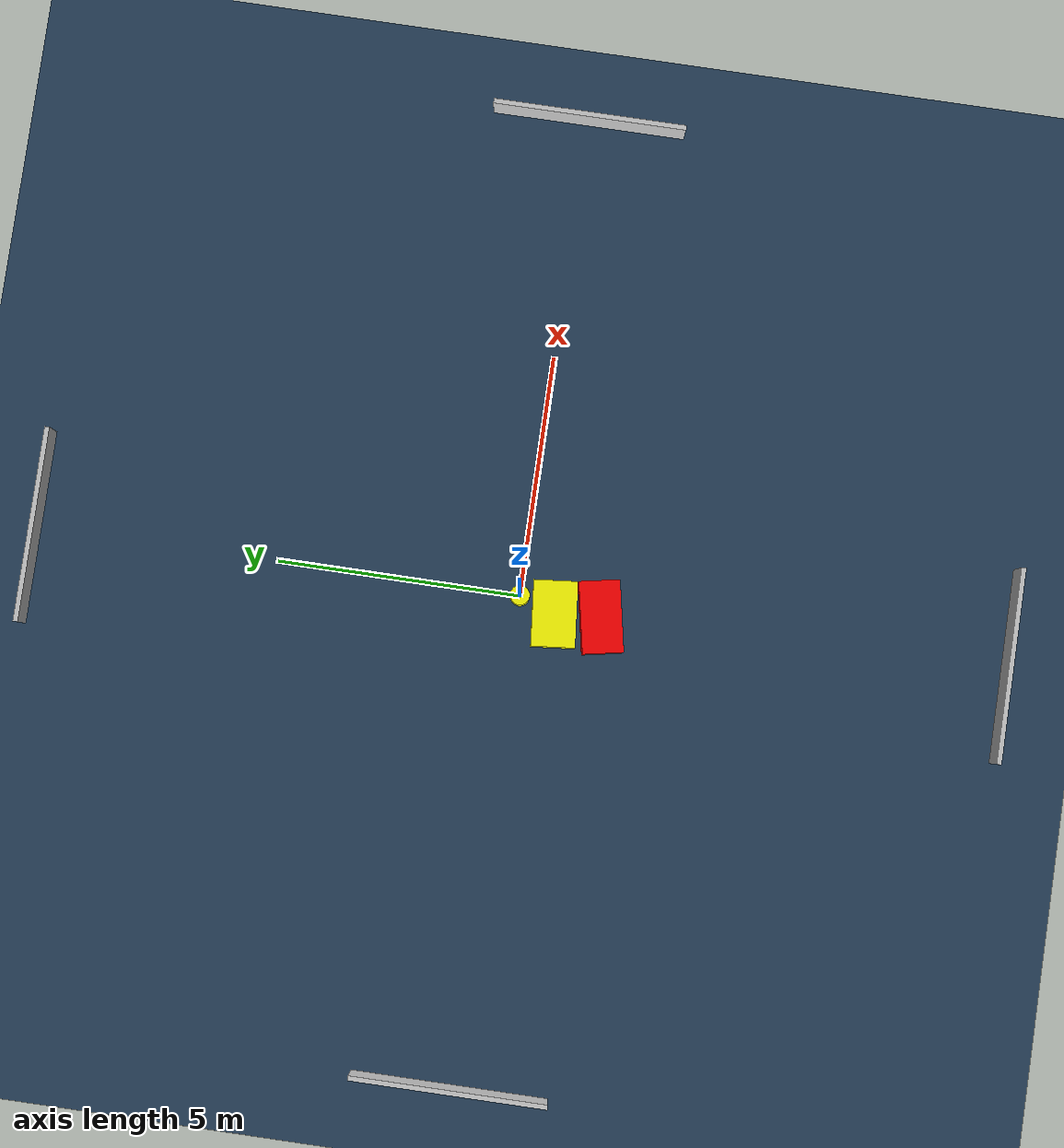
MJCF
<?xml version="1.0" ?>
<mujoco model="generated_environment">
  <option timestep="0.01" integrator="RK4" cone="elliptic"/>
  <default>
    <geom density="1"/>
  </default>
  <asset>
    <texture builtin="gradient" height="3072" name="skybox" rgb1="0.3 0.5 0.7" rgb2="0 0 0" type="skybox" width="512"/>
    <texture builtin="checker" height="300" name="groundplane" rgb1="0.2 0.3 0.4" rgb2="0.1 0.2 0.3" type="2d" width="300"/>
    <material name="groundplane" reflectance="0.2" texrepeat="5 5" texture="groundplane"/>
  </asset>
  <worldbody>
    <light dir="0 0 -1" directional="true" pos="0 0 1.5"/>
    <geom condim="3" friction="0.5 0.005 0.001" material="groundplane" name="floor" pos="0 0 0" size="0 0 0.05" type="plane"/>
    <body name="walls">
      <geom name="wall_1" condim="4" pos="-10.0 0.0 0.3" rgba="0.800000011920929 0.800000011920929 0.800000011920929 1.0" size="0.05 2.0 0.3" type="box"/>
      <geom name="wall_2" condim="4" pos="10.0 0.0 0.3" rgba="0.800000011920929 0.800000011920929 0.800000011920929 1.0" size="0.05 2.0 0.3" type="box"/>
      <geom name="wall_3" condim="4" pos="0.0 -10.0 0.3" rgba="0.800000011920929 0.800000011920929 0.800000011920929 1.0" size="2.0 0.05 0.3" type="box"/>
      <geom name="wall_4" condim="4" pos="0.0 10.0 0.3" rgba="0.800000011920929 0.800000011920929 0.800000011920929 1.0" size="2.0 0.05 0.3" type="box"/>
    </body>
    <body name="robot">
      <joint name="joint_x" type="slide" pos="0 0 0" axis="1 0 0"/>
      <joint name="joint_y" type="slide" pos="0 0 0" axis="0 1 0"/>
      <geom name="robot" type="cylinder" pos="0.0 0.0 0.2" size="0.2 0.2 0.0" mass="5.0" friction="1.0 0.005 0.0001" condim="4" rgba="1.0 1.0 0.0 1.0"/>
    </body>
    <body name="obstacle_1_movable">
      <geom name="obstacle_1_movable" condim="4" pos="-0.2819577513132801 -0.7418722839586726 0.3" euler="0 0 5.398840484493714" friction="0.0 0.005 0.001" rgba="1.0 1.0 0.0 1.0" size="0.6721883362399463 0.4503242560856743 0.3" type="box" mass="0.1"/>
      <joint type="free"/>
    </body>
    <body name="obstacle_2_static">
      <geom name="obstacle_2_static" condim="4" pos="-0.20766448101370652 -1.6853075151680086 0.3" euler="0 0 100.91184618804101" friction="0.0 0.005 0.001" rgba="1.0 0.0 0.0 1.0" size="0.41857008933351036 0.7356216498550507 0.3" type="box"/>
    </body>
  </worldbody>
  <actuator>
    <motor name="actuator_x" joint="joint_x" gear="1" ctrlrange="-1 1"/>
    <motor name="actuator_y" joint="joint_y" gear="1" ctrlrange="-1 1"/>
  </actuator>
</mujoco>
